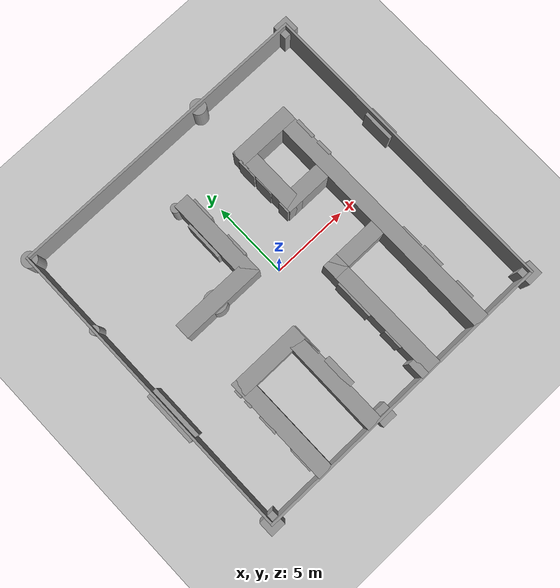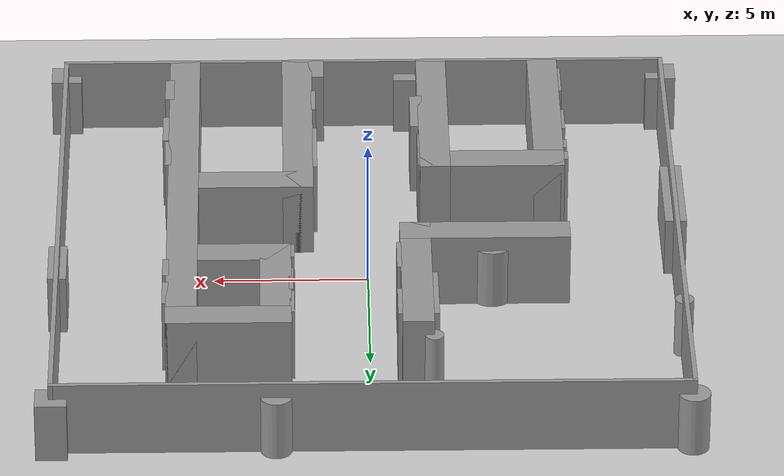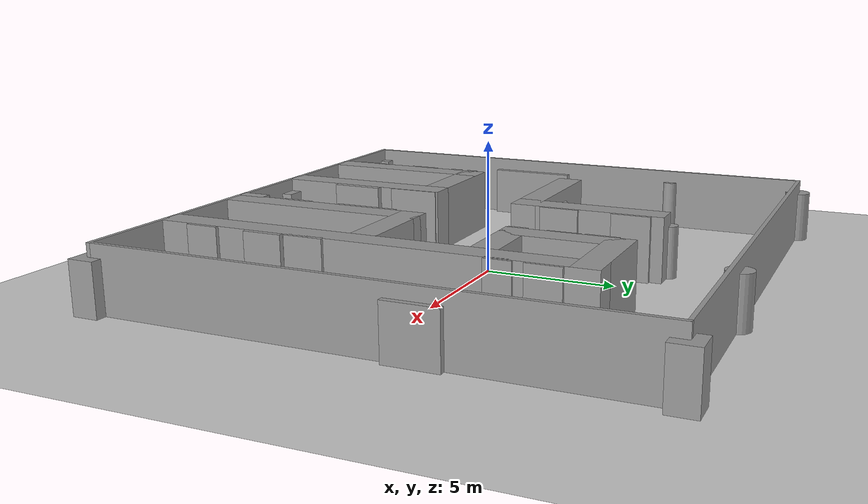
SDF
<sdf version="1.6">
 <world name="default">
  <include><uri>model://ground_plane</uri></include>
  <include><uri>model://sun</uri></include>
  <scene><shadows>false</shadows></scene>
  <physics type="ode">
   <real_time_update_rate>1000.0</real_time_update_rate>
   <max_step_size>0.001</max_step_size>
   <real_time_factor>1</real_time_factor>
   <ode>
    <solver>
     <type>quick</type>
     <iters>150</iters>
     <precon_iters>0</precon_iters>
     <sor>1.400000</sor>
     <use_dynamic_moi_rescaling>1</use_dynamic_moi_rescaling>
    </solver>
    <constraints>
     <cfm>0.00001</cfm>
     <erp>0.2</erp>
     <contact_max_correcting_vel>2000.000000</contact_max_correcting_vel>
     <contact_surface_layer>0.01000</contact_surface_layer>
    </constraints>
   </ode>
  </physics>
  <model name="warehouse"><static>1</static><include><uri>model://warehouse</uri></include></model>
  <model name="landmark_pillar_1">
   <pose>10.0 10.0 1.0 0 0 0</pose>
   <static>1</static>
   <link name="link">
    <collision name="collision"><geometry><box><size>1.0 1.0 2.0</size></box></geometry></collision>
    <visual name="visual">
     <geometry><box><size>1.0 1.0 2.0</size></box></geometry>
     <material>
      <script><uri>file://media/materials/scripts/gazebo.material</uri><name>Gazebo/Grey</name></script>
     </material>
    </visual>
   </link>
  </model>
  <model name="landmark_pillar_2">
   <pose>10.0 -10.0 1.0 0 0 0</pose>
   <static>1</static>
   <link name="link">
    <collision name="collision"><geometry><box><size>1.0 1.0 2.0</size></box></geometry></collision>
    <visual name="visual">
     <geometry><box><size>1.0 1.0 2.0</size></box></geometry>
     <material>
      <script><uri>file://media/materials/scripts/gazebo.material</uri><name>Gazebo/Grey</name></script>
     </material>
    </visual>
   </link>
  </model>
  <model name="landmark_pillar_3">
   <pose>-10.0 -10.0 1.0 0 0 0</pose>
   <static>1</static>
   <link name="link">
    <collision name="collision"><geometry><box><size>1.0 1.0 2.0</size></box></geometry></collision>
    <visual name="visual">
     <geometry><box><size>1.0 1.0 2.0</size></box></geometry>
     <material>
      <script><uri>file://media/materials/scripts/gazebo.material</uri><name>Gazebo/Grey</name></script>
     </material>
    </visual>
   </link>
  </model>
  <model name="landmark_pillar_4">
   <pose>-10.0 10.0 1.0 0 0 0</pose>
   <static>1</static>
   <link name="link">
    <collision name="collision">
     <geometry><cylinder><radius>0.5</radius><length>2.0</length></cylinder></geometry>
    </collision>
    <visual name="visual">
     <geometry><cylinder><radius>0.5</radius><length>2.0</length></cylinder></geometry>
     <material>
      <script><uri>file://media/materials/scripts/gazebo.material</uri><name>Gazebo/Grey</name></script>
     </material>
    </visual>
   </link>
  </model>
  <model name="landmark_pillar_5">
   <pose>3.0 10.0 1.0 0 0 0</pose>
   <static>1</static>
   <link name="link">
    <collision name="collision">
     <geometry><cylinder><radius>0.5</radius><length>2.0</length></cylinder></geometry>
    </collision>
    <visual name="visual">
     <geometry><cylinder><radius>0.5</radius><length>2.0</length></cylinder></geometry>
     <material>
      <script><uri>file://media/materials/scripts/gazebo.material</uri><name>Gazebo/Grey</name></script>
     </material>
    </visual>
   </link>
  </model>
  <model name="landmark_pillar_6">
   <pose>-1.5 -10.0 1.0 0 0 0</pose>
   <static>1</static>
   <link name="link">
    <collision name="collision"><geometry><box><size>1.0 1.0 2.0</size></box></geometry></collision>
    <visual name="visual">
     <geometry><box><size>1.0 1.0 2.0</size></box></geometry>
     <material>
      <script><uri>file://media/materials/scripts/gazebo.material</uri><name>Gazebo/Grey</name></script>
     </material>
    </visual>
   </link>
  </model>
  <model name="landmark_pillar_7">
   <pose>10.0 2.0 1.0 0 0 0</pose>
   <static>1</static>
   <link name="link">
    <collision name="collision"><geometry><box><size>0.5 2.0 2.0</size></box></geometry></collision>
    <visual name="visual">
     <geometry><box><size>0.6 2.0 2.0</size></box></geometry>
     <material>
      <script><uri>file://media/materials/scripts/gazebo.material</uri><name>Gazebo/Grey</name></script>
     </material>
    </visual>
   </link>
  </model>
  <model name="landmark_pillar_8">
   <pose>-10.0 -2.0 1.0 0 0 0</pose>
   <static>1</static>
   <link name="link">
    <collision name="collision"><geometry><box><size>0.7 3.5 2.0</size></box></geometry></collision>
    <visual name="visual">
     <geometry><box><size>0.7 3.5 2.0</size></box></geometry>
     <material>
      <script><uri>file://media/materials/scripts/gazebo.material</uri><name>Gazebo/Grey</name></script>
     </material>
    </visual>
   </link>
  </model>
  <model name="landmark_pillar_9">
   <pose>-2.0 4.0 1.0 0 0 0</pose>
   <static>1</static>
   <link name="link">
    <collision name="collision"><geometry><box><size>0.4 2.5 2.0</size></box></geometry></collision>
    <visual name="visual">
     <geometry><box><size>0.4 2.5 2.0</size></box></geometry>
     <material>
      <script><uri>file://media/materials/scripts/gazebo.material</uri><name>Gazebo/Grey</name></script>
     </material>
    </visual>
   </link>
  </model>
  <model name="landmark_pillar_10">
   <pose>-4.0 1.0 1.0 0 0 0</pose>
   <static>1</static>
   <link name="link">
    <collision name="collision">
     <geometry><cylinder><radius>0.7</radius><length>2.0</length></cylinder></geometry>
    </collision>
    <visual name="visual">
     <geometry><cylinder><radius>0.7</radius><length>2.0</length></cylinder></geometry>
     <material>
      <script><uri>file://media/materials/scripts/gazebo.material</uri><name>Gazebo/Grey</name></script>
     </material>
    </visual>
   </link>
  </model>
  <model name="landmark_pillar_11">
   <pose>-2.0 6.5 1.0 0 0 0</pose>
   <static>1</static>
   <link name="link">
    <collision name="collision">
     <geometry><cylinder><radius>0.3</radius><length>2.0</length></cylinder></geometry>
    </collision>
    <visual name="visual">
     <geometry><cylinder><radius>0.3</radius><length>2.0</length></cylinder></geometry>
     <material>
      <script><uri>file://media/materials/scripts/gazebo.material</uri><name>Gazebo/Grey</name></script>
     </material>
    </visual>
   </link>
  </model>
  <model name="landmark_pillar_12">
   <pose>-10.0 4.5 1.0 0 0 0</pose>
   <static>1</static>
   <link name="link">
    <collision name="collision">
     <geometry><cylinder><radius>0.3</radius><length>2.0</length></cylinder></geometry>
    </collision>
    <visual name="visual">
     <geometry><cylinder><radius>0.3</radius><length>2.0</length></cylinder></geometry>
     <material>
      <script><uri>file://media/materials/scripts/gazebo.material</uri><name>Gazebo/Grey</name></script>
     </material>
    </visual>
   </link>
  </model>
  <plugin name="gazebo_ros_state" filename="libgazebo_ros_state.so">
   <ros><namespace>/</namespace></ros>
   <update_rate>20</update_rate>
  </plugin>
 </world>
</sdf>

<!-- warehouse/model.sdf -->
<sdf version='1.7'>
  <model name='warehouse'>
    <pose>0 0 0 0 -0 0</pose>
    <link name='Wall_0'>
      <collision name='Wall_0_Collision'>
        <geometry>
          <box>
            <size>20.15 0.15 2.5</size>
          </box>
        </geometry>
        <pose>0 0 1.25 0 -0 0</pose>
      </collision>
      <visual name='Wall_0_Visual'>
        <pose>0 0 1.25 0 -0 0</pose>
        <geometry>
          <box>
            <size>20.15 0.15 2.5</size>
          </box>
        </geometry>
        <material>
          <script>
            <uri>file://media/materials/scripts/gazebo.material</uri>
            <name>Gazebo/Grey</name>
          </script>
          <ambient>1 1 1 1</ambient>
        </material>
        <meta>
          <layer>0</layer>
        </meta>
      </visual>
      <pose>10 0 0 0 -0 -1.5708</pose>
    </link>
    <link name='Wall_10'>
      <collision name='Wall_10_Collision'>
        <geometry>
          <box>
            <size>4 1 2.5</size>
          </box>
        </geometry>
        <pose>0 0 1.25 0 -0 0</pose>
      </collision>
      <visual name='Wall_10_Visual'>
        <pose>0 0 1.25 0 -0 0</pose>
        <geometry>
          <box>
            <size>4 1 2.5</size>
          </box>
        </geometry>
        <material>
          <script>
            <uri>file://media/materials/scripts/gazebo.material</uri>
            <name>Gazebo/Grey</name>
          </script>
          <ambient>1 1 1 1</ambient>
        </material>
        <meta>
          <layer>0</layer>
        </meta>
      </visual>
      <pose>4.5 6 0 0 -0 3.14159</pose>
    </link>
    <link name='Wall_16'>
      <collision name='Wall_16_Collision'>
        <geometry>
          <box>
            <size>4.75 1 2.5</size>
          </box>
        </geometry>
        <pose>0 0 1.25 0 -0 0</pose>
      </collision>
      <visual name='Wall_16_Visual'>
        <pose>0 0 1.25 0 -0 0</pose>
        <geometry>
          <box>
            <size>4.75 1 2.5</size>
          </box>
        </geometry>
        <material>
          <script>
            <uri>file://media/materials/scripts/gazebo.material</uri>
            <name>Gazebo/Grey</name>
          </script>
          <ambient>1 1 1 1</ambient>
        </material>
        <meta>
          <layer>0</layer>
        </meta>
      </visual>
      <pose>3 4.125 0 0 -0 -1.5708</pose>
    </link>
    <link name='Wall_18'>
      <collision name='Wall_18_Collision'>
        <geometry>
          <box>
            <size>3 1 2.5</size>
          </box>
        </geometry>
        <pose>0 0 1.25 0 -0 0</pose>
      </collision>
      <visual name='Wall_18_Visual'>
        <pose>0 0 1.25 0 -0 0</pose>
        <geometry>
          <box>
            <size>3 1 2.5</size>
          </box>
        </geometry>
        <material>
          <script>
            <uri>file://media/materials/scripts/gazebo.material</uri>
            <name>Gazebo/Grey</name>
          </script>
          <ambient>1 1 1 1</ambient>
        </material>
        <meta>
          <layer>0</layer>
        </meta>
      </visual>
      <pose>4 2.25 0 0 -0 0</pose>
    </link>
    <link name='Wall_2'>
      <collision name='Wall_2_Collision'>
        <geometry>
          <box>
            <size>20.15 0.15 2.5</size>
          </box>
        </geometry>
        <pose>0 0 1.25 0 -0 0</pose>
      </collision>
      <visual name='Wall_2_Visual'>
        <pose>0 0 1.25 0 -0 0</pose>
        <geometry>
          <box>
            <size>20.15 0.15 2.5</size>
          </box>
        </geometry>
        <material>
          <script>
            <uri>file://media/materials/scripts/gazebo.material</uri>
            <name>Gazebo/Grey</name>
          </script>
          <ambient>1 1 1 1</ambient>
        </material>
        <meta>
          <layer>0</layer>
        </meta>
      </visual>
      <pose>0 10 0 0 -0 3.14159</pose>
    </link>
    <link name='Wall_20'>
      <collision name='Wall_20_Collision'>
        <geometry>
          <box>
            <size>3.75 1 2.5</size>
          </box>
        </geometry>
        <pose>0 0 1.25 0 -0 0</pose>
      </collision>
      <visual name='Wall_20_Visual'>
        <pose>0 0 1.25 0 -0 0</pose>
        <geometry>
          <box>
            <size>3.75 1 2.5</size>
          </box>
        </geometry>
        <material>
          <script>
            <uri>file://media/materials/scripts/gazebo.material</uri>
            <name>Gazebo/Grey</name>
          </script>
          <ambient>1 1 1 1</ambient>
        </material>
        <meta>
          <layer>0</layer>
        </meta>
      </visual>
      <pose>3.625 -2.25 0 0 -0 0</pose>
    </link>
    <link name='Wall_22'>
      <collision name='Wall_22_Collision'>
        <geometry>
          <box>
            <size>8.25 1 2.5</size>
          </box>
        </geometry>
        <pose>0 0 1.25 0 -0 0</pose>
      </collision>
      <visual name='Wall_22_Visual'>
        <pose>0 0 1.25 0 -0 0</pose>
        <geometry>
          <box>
            <size>8.25 1 2.5</size>
          </box>
        </geometry>
        <material>
          <script>
            <uri>file://media/materials/scripts/gazebo.material</uri>
            <name>Gazebo/Grey</name>
          </script>
          <ambient>1 1 1 1</ambient>
        </material>
        <meta>
          <layer>0</layer>
        </meta>
      </visual>
      <pose>2.25 -5.875 0 0 -0 1.5708</pose>
    </link>
    <link name='Wall_24'>
      <collision name='Wall_24_Collision'>
        <geometry>
          <box>
            <size>6 1 2.5</size>
          </box>
        </geometry>
        <pose>0 0 1.25 0 -0 0</pose>
      </collision>
      <visual name='Wall_24_Visual'>
        <pose>0 0 1.25 0 -0 0</pose>
        <geometry>
          <box>
            <size>6 1 2.5</size>
          </box>
        </geometry>
        <material>
          <script>
            <uri>file://media/materials/scripts/gazebo.material</uri>
            <name>Gazebo/Grey</name>
          </script>
          <ambient>1 1 1 1</ambient>
        </material>
        <meta>
          <layer>0</layer>
        </meta>
      </visual>
      <pose>-1.5 3.5 0 0 -0 -1.5708</pose>
    </link>
    <link name='Wall_26'>
      <collision name='Wall_26_Collision'>
        <geometry>
          <box>
            <size>7 1 2.5</size>
          </box>
        </geometry>
        <pose>0 0 1.25 0 -0 0</pose>
      </collision>
      <visual name='Wall_26_Visual'>
        <pose>0 0 1.25 0 -0 0</pose>
        <geometry>
          <box>
            <size>7 1 2.5</size>
          </box>
        </geometry>
        <material>
          <script>
            <uri>file://media/materials/scripts/gazebo.material</uri>
            <name>Gazebo/Grey</name>
          </script>
          <ambient>1 1 1 1</ambient>
        </material>
        <meta>
          <layer>0</layer>
        </meta>
      </visual>
      <pose>-2.25 -6.5 0 0 -0 -1.5708</pose>
    </link>
    <link name='Wall_28'>
      <collision name='Wall_28_Collision'>
        <geometry>
          <box>
            <size>4.75 1 2.5</size>
          </box>
        </geometry>
        <pose>0 0 1.25 0 -0 0</pose>
      </collision>
      <visual name='Wall_28_Visual'>
        <pose>0 0 1.25 0 -0 0</pose>
        <geometry>
          <box>
            <size>4.75 1 2.5</size>
          </box>
        </geometry>
        <material>
          <script>
            <uri>file://media/materials/scripts/gazebo.material</uri>
            <name>Gazebo/Grey</name>
          </script>
          <ambient>1 1 1 1</ambient>
        </material>
        <meta>
          <layer>0</layer>
        </meta>
      </visual>
      <pose>-4.125 -3.5 0 0 -0 3.14159</pose>
    </link>
    <link name='Wall_30'>
      <collision name='Wall_30_Collision'>
        <geometry>
          <box>
            <size>7 1 2.5</size>
          </box>
        </geometry>
        <pose>0 0 1.25 0 -0 0</pose>
      </collision>
      <visual name='Wall_30_Visual'>
        <pose>0 0 1.25 0 -0 0</pose>
        <geometry>
          <box>
            <size>7 1 2.5</size>
          </box>
        </geometry>
        <material>
          <script>
            <uri>file://media/materials/scripts/gazebo.material</uri>
            <name>Gazebo/Grey</name>
          </script>
          <ambient>1 1 1 1</ambient>
        </material>
        <meta>
          <layer>0</layer>
        </meta>
      </visual>
      <pose>-6 -6.5 0 0 -0 -1.5708</pose>
    </link>
    <link name='Wall_32'>
      <collision name='Wall_32_Collision'>
        <geometry>
          <box>
            <size>5.5 1 2.5</size>
          </box>
        </geometry>
        <pose>0 0 1.25 0 -0 0</pose>
      </collision>
      <visual name='Wall_32_Visual'>
        <pose>0 0 1.25 0 -0 0</pose>
        <geometry>
          <box>
            <size>5.5 1 2.5</size>
          </box>
        </geometry>
        <material>
          <script>
            <uri>file://media/materials/scripts/gazebo.material</uri>
            <name>Gazebo/Grey</name>
          </script>
          <ambient>1 1 1 1</ambient>
        </material>
        <meta>
          <layer>0</layer>
        </meta>
      </visual>
      <pose>-3.75 1 0 0 -0 3.14159</pose>
    </link>
    <link name='Wall_34'>
      <collision name='Wall_34_Collision'>
        <geometry>
          <box>
            <size>1.3 0.2 2.5</size>
          </box>
        </geometry>
        <pose>0 0 1.25 0 -0 0</pose>
      </collision>
      <visual name='Wall_34_Visual'>
        <pose>0 0 1.25 0 -0 0</pose>
        <geometry>
          <box>
            <size>1.3 0.2 2.5</size>
          </box>
        </geometry>
        <material>
          <script>
            <uri>file://media/materials/scripts/gazebo.material</uri>
            <name>Gazebo/Grey</name>
          </script>
          <ambient>1 1 1 1</ambient>
        </material>
        <meta>
          <layer>0</layer>
        </meta>
      </visual>
      <pose>6.51 4.684 0 0 -0 -1.5708</pose>
    </link>
    <link name='Wall_36'>
      <collision name='Wall_36_Collision'>
        <geometry>
          <box>
            <size>1 0.2 2.5</size>
          </box>
        </geometry>
        <pose>0 0 1.25 0 -0 0</pose>
      </collision>
      <visual name='Wall_36_Visual'>
        <pose>0 0 1.25 0 -0 0</pose>
        <geometry>
          <box>
            <size>1 0.2 2.5</size>
          </box>
        </geometry>
        <material>
          <script>
            <uri>file://media/materials/scripts/gazebo.material</uri>
            <name>Gazebo/Grey</name>
          </script>
          <ambient>1 1 1 1</ambient>
        </material>
        <meta>
          <layer>0</layer>
        </meta>
      </visual>
      <pose>6.51 3.149 0 0 -0 -1.5708</pose>
    </link>
    <link name='Wall_38'>
      <collision name='Wall_38_Collision'>
        <geometry>
          <box>
            <size>1.5 0.2 2.5</size>
          </box>
        </geometry>
        <pose>0 0 1.25 0 -0 0</pose>
      </collision>
      <visual name='Wall_38_Visual'>
        <pose>0 0 1.25 0 -0 0</pose>
        <geometry>
          <box>
            <size>1.5 0.2 2.5</size>
          </box>
        </geometry>
        <material>
          <script>
            <uri>file://media/materials/scripts/gazebo.material</uri>
            <name>Gazebo/Grey</name>
          </script>
          <ambient>1 1 1 1</ambient>
        </material>
        <meta>
          <layer>0</layer>
        </meta>
      </visual>
      <pose>6.51 -3.971 0 0 -0 -1.5708</pose>
    </link>
    <link name='Wall_4'>
      <collision name='Wall_4_Collision'>
        <geometry>
          <box>
            <size>20.15 0.15 2.5</size>
          </box>
        </geometry>
        <pose>0 0 1.25 0 -0 0</pose>
      </collision>
      <visual name='Wall_4_Visual'>
        <pose>0 0 1.25 0 -0 0</pose>
        <geometry>
          <box>
            <size>20.15 0.15 2.5</size>
          </box>
        </geometry>
        <material>
          <script>
            <uri>file://media/materials/scripts/gazebo.material</uri>
            <name>Gazebo/Grey</name>
          </script>
          <ambient>1 1 1 1</ambient>
        </material>
        <meta>
          <layer>0</layer>
        </meta>
      </visual>
      <pose>-10 0 0 0 -0 -1.5708</pose>
    </link>
    <link name='Wall_40'>
      <collision name='Wall_40_Collision'>
        <geometry>
          <box>
            <size>1.5 0.2 2.5</size>
          </box>
        </geometry>
        <pose>0 0 1.25 0 -0 0</pose>
      </collision>
      <visual name='Wall_40_Visual'>
        <pose>0 0 1.25 0 -0 0</pose>
        <geometry>
          <box>
            <size>1.5 0.2 2.5</size>
          </box>
        </geometry>
        <material>
          <script>
            <uri>file://media/materials/scripts/gazebo.material</uri>
            <name>Gazebo/Grey</name>
          </script>
          <ambient>1 1 1 1</ambient>
        </material>
        <meta>
          <layer>0</layer>
        </meta>
      </visual>
      <pose>6.6 -5.552 0 0 -0 -1.5708</pose>
    </link>
    <link name='Wall_42'>
      <collision name='Wall_42_Collision'>
        <geometry>
          <box>
            <size>1.25 0.3 2.5</size>
          </box>
        </geometry>
        <pose>0 0 1.25 0 -0 0</pose>
      </collision>
      <visual name='Wall_42_Visual'>
        <pose>0 0 1.25 0 -0 0</pose>
        <geometry>
          <box>
            <size>1.25 0.3 2.5</size>
          </box>
        </geometry>
        <material>
          <script>
            <uri>file://media/materials/scripts/gazebo.material</uri>
            <name>Gazebo/Grey</name>
          </script>
          <ambient>1 1 1 1</ambient>
        </material>
        <meta>
          <layer>0</layer>
        </meta>
      </visual>
      <pose>6.5 -8.106 0 0 -0 -1.5708</pose>
    </link>
    <link name='Wall_44'>
      <collision name='Wall_44_Collision'>
        <geometry>
          <box>
            <size>1.25 0.15 2.5</size>
          </box>
        </geometry>
        <pose>0 0 1.25 0 -0 0</pose>
      </collision>
      <visual name='Wall_44_Visual'>
        <pose>0 0 1.25 0 -0 0</pose>
        <geometry>
          <box>
            <size>1.25 0.15 2.5</size>
          </box>
        </geometry>
        <material>
          <script>
            <uri>file://media/materials/scripts/gazebo.material</uri>
            <name>Gazebo/Grey</name>
          </script>
          <ambient>1 1 1 1</ambient>
        </material>
        <meta>
          <layer>0</layer>
        </meta>
      </visual>
      <pose>2.47736 5.26057 0 0 -0 1.5708</pose>
    </link>
    <link name='Wall_46'>
      <collision name='Wall_46_Collision'>
        <geometry>
          <box>
            <size>1.25 0.15 2.5</size>
          </box>
        </geometry>
        <pose>0 0 1.25 0 -0 0</pose>
      </collision>
      <visual name='Wall_46_Visual'>
        <pose>0 0 1.25 0 -0 0</pose>
        <geometry>
          <box>
            <size>1.25 0.15 2.5</size>
          </box>
        </geometry>
        <material>
          <script>
            <uri>file://media/materials/scripts/gazebo.material</uri>
            <name>Gazebo/Grey</name>
          </script>
          <ambient>1 1 1 1</ambient>
        </material>
        <meta>
          <layer>0</layer>
        </meta>
      </visual>
      <pose>2.50264 3.88239 0 0 -0 -1.5708</pose>
    </link>
    <link name='Wall_48'>
      <collision name='Wall_48_Collision'>
        <geometry>
          <box>
            <size>0.75 0.15 2.5</size>
          </box>
        </geometry>
        <pose>0 0 1.25 0 -0 0</pose>
      </collision>
      <visual name='Wall_48_Visual'>
        <pose>0 0 1.25 0 -0 0</pose>
        <geometry>
          <box>
            <size>0.75 0.15 2.5</size>
          </box>
        </geometry>
        <material>
          <script>
            <uri>file://media/materials/scripts/gazebo.material</uri>
            <name>Gazebo/Grey</name>
          </script>
          <ambient>1 1 1 1</ambient>
        </material>
        <meta>
          <layer>0</layer>
        </meta>
      </visual>
      <pose>2.46343 2.18465 0 0 -0 -1.5708</pose>
    </link>
    <link name='Wall_50'>
      <collision name='Wall_50_Collision'>
        <geometry>
          <box>
            <size>2.5 0.15 2.5</size>
          </box>
        </geometry>
        <pose>0 0 1.25 0 -0 0</pose>
      </collision>
      <visual name='Wall_50_Visual'>
        <pose>0 0 1.25 0 -0 0</pose>
        <geometry>
          <box>
            <size>2.5 0.15 2.5</size>
          </box>
        </geometry>
        <material>
          <script>
            <uri>file://media/materials/scripts/gazebo.material</uri>
            <name>Gazebo/Grey</name>
          </script>
          <ambient>1 1 1 1</ambient>
        </material>
        <meta>
          <layer>0</layer>
        </meta>
      </visual>
      <pose>1.69227 -4.29414 0 0 -0 -1.5708</pose>
    </link>
    <link name='Wall_52'>
      <collision name='Wall_52_Collision'>
        <geometry>
          <box>
            <size>1.25 0.15 2.5</size>
          </box>
        </geometry>
        <pose>0 0 1.25 0 -0 0</pose>
      </collision>
      <visual name='Wall_52_Visual'>
        <pose>0 0 1.25 0 -0 0</pose>
        <geometry>
          <box>
            <size>1.25 0.15 2.5</size>
          </box>
        </geometry>
        <material>
          <script>
            <uri>file://media/materials/scripts/gazebo.material</uri>
            <name>Gazebo/Grey</name>
          </script>
          <ambient>1 1 1 1</ambient>
        </material>
        <meta>
          <layer>0</layer>
        </meta>
      </visual>
      <pose>1.71522 -7.36306 0 0 -0 -1.5708</pose>
    </link>
    <link name='Wall_54'>
      <collision name='Wall_54_Collision'>
        <geometry>
          <box>
            <size>1.10026 0.5 2.5</size>
          </box>
        </geometry>
        <pose>0 0 1.25 0 -0 0</pose>
      </collision>
      <visual name='Wall_54_Visual'>
        <pose>0 0 1.25 0 -0 0</pose>
        <geometry>
          <box>
            <size>1.10026 0.5 2.5</size>
          </box>
        </geometry>
        <material>
          <script>
            <uri>file://media/materials/scripts/gazebo.material</uri>
            <name>Gazebo/Grey</name>
          </script>
          <ambient>1 1 1 1</ambient>
        </material>
        <meta>
          <layer>0</layer>
        </meta>
      </visual>
      <pose>1.607 -9.467 0 0 -0 -1.5708</pose>
    </link>
    <link name='Wall_56'>
      <collision name='Wall_56_Collision'>
        <geometry>
          <box>
            <size>2 0.4 2.5</size>
          </box>
        </geometry>
        <pose>0 0 1.25 0 -0 0</pose>
      </collision>
      <visual name='Wall_56_Visual'>
        <pose>0 0 1.25 0 -0 0</pose>
        <geometry>
          <box>
            <size>2 0.4 2.5</size>
          </box>
        </geometry>
        <material>
          <script>
            <uri>file://media/materials/scripts/gazebo.material</uri>
            <name>Gazebo/Grey</name>
          </script>
          <ambient>1 1 1 1</ambient>
        </material>
        <meta>
          <layer>0</layer>
        </meta>
      </visual>
      <pose>-1.6867 -6.58521 0 0 -0 -1.5708</pose>
    </link>
    <link name='Wall_58'>
      <collision name='Wall_58_Collision'>
        <geometry>
          <box>
            <size>2 0.15 2.5</size>
          </box>
        </geometry>
        <pose>0 0 1.25 0 -0 0</pose>
      </collision>
      <visual name='Wall_58_Visual'>
        <pose>0 0 1.25 0 -0 0</pose>
        <geometry>
          <box>
            <size>2 0.15 2.5</size>
          </box>
        </geometry>
        <material>
          <script>
            <uri>file://media/materials/scripts/gazebo.material</uri>
            <name>Gazebo/Grey</name>
          </script>
          <ambient>1 1 1 1</ambient>
        </material>
        <meta>
          <layer>0</layer>
        </meta>
      </visual>
      <pose>-1.76751 -4.0837 0 0 -0 -1.5708</pose>
    </link>
    <link name='Wall_6'>
      <collision name='Wall_6_Collision'>
        <geometry>
          <box>
            <size>20.15 0.15 2.5</size>
          </box>
        </geometry>
        <pose>0 0 1.25 0 -0 0</pose>
      </collision>
      <visual name='Wall_6_Visual'>
        <pose>0 0 1.25 0 -0 0</pose>
        <geometry>
          <box>
            <size>20.15 0.15 2.5</size>
          </box>
        </geometry>
        <material>
          <script>
            <uri>file://media/materials/scripts/gazebo.material</uri>
            <name>Gazebo/Grey</name>
          </script>
          <ambient>1 1 1 1</ambient>
        </material>
        <meta>
          <layer>0</layer>
        </meta>
      </visual>
      <pose>0 -10 0 0 -0 0</pose>
    </link>
    <link name='Wall_60'>
      <collision name='Wall_60_Collision'>
        <geometry>
          <box>
            <size>1.5 0.15 2.5</size>
          </box>
        </geometry>
        <pose>0 0 1.25 0 -0 0</pose>
      </collision>
      <visual name='Wall_60_Visual'>
        <pose>0 0 1.25 0 -0 0</pose>
        <geometry>
          <box>
            <size>1.5 0.15 2.5</size>
          </box>
        </geometry>
        <material>
          <script>
            <uri>file://media/materials/scripts/gazebo.material</uri>
            <name>Gazebo/Grey</name>
          </script>
          <ambient>1 1 1 1</ambient>
        </material>
        <meta>
          <layer>0</layer>
        </meta>
      </visual>
      <pose>-0.935121 5.28224 0 0 -0 -1.5708</pose>
    </link>
    <link name='Wall_62'>
      <collision name='Wall_62_Collision'>
        <geometry>
          <box>
            <size>1.5 0.15 2.5</size>
          </box>
        </geometry>
        <pose>0 0 1.25 0 -0 0</pose>
      </collision>
      <visual name='Wall_62_Visual'>
        <pose>0 0 1.25 0 -0 0</pose>
        <geometry>
          <box>
            <size>1.5 0.15 2.5</size>
          </box>
        </geometry>
        <material>
          <script>
            <uri>file://media/materials/scripts/gazebo.material</uri>
            <name>Gazebo/Grey</name>
          </script>
          <ambient>1 1 1 1</ambient>
        </material>
        <meta>
          <layer>0</layer>
        </meta>
      </visual>
      <pose>-0.955695 2.48413 0 0 -0 -1.5708</pose>
    </link>
    <link name='Wall_64'>
      <collision name='Wall_64_Collision'>
        <geometry>
          <box>
            <size>1.5 0.15 2.5</size>
          </box>
        </geometry>
        <pose>0 0 1.25 0 -0 0</pose>
      </collision>
      <visual name='Wall_64_Visual'>
        <pose>0 0 1.25 0 -0 0</pose>
        <geometry>
          <box>
            <size>1.5 0.15 2.5</size>
          </box>
        </geometry>
        <material>
          <script>
            <uri>file://media/materials/scripts/gazebo.material</uri>
            <name>Gazebo/Grey</name>
          </script>
          <ambient>1 1 1 1</ambient>
        </material>
        <meta>
          <layer>0</layer>
        </meta>
      </visual>
      <pose>-6.51322 -8.61183 0 0 -0 -1.5708</pose>
    </link>
    <link name='Wall_66'>
      <collision name='Wall_66_Collision'>
        <geometry>
          <box>
            <size>1.25 0.15 2.5</size>
          </box>
        </geometry>
        <pose>0 0 1.25 0 -0 0</pose>
      </collision>
      <visual name='Wall_66_Visual'>
        <pose>0 0 1.25 0 -0 0</pose>
        <geometry>
          <box>
            <size>1.25 0.15 2.5</size>
          </box>
        </geometry>
        <material>
          <script>
            <uri>file://media/materials/scripts/gazebo.material</uri>
            <name>Gazebo/Grey</name>
          </script>
          <ambient>1 1 1 1</ambient>
        </material>
        <meta>
          <layer>0</layer>
        </meta>
      </visual>
      <pose>-6.53266 -5.99103 0 0 -0 -1.5708</pose>
    </link>
    <link name='Wall_68'>
      <collision name='Wall_68_Collision'>
        <geometry>
          <box>
            <size>0.5 0.15 2.5</size>
          </box>
        </geometry>
        <pose>0 0 1.25 0 -0 0</pose>
      </collision>
      <visual name='Wall_68_Visual'>
        <pose>0 0 1.25 0 -0 0</pose>
        <geometry>
          <box>
            <size>0.5 0.15 2.5</size>
          </box>
        </geometry>
        <material>
          <script>
            <uri>file://media/materials/scripts/gazebo.material</uri>
            <name>Gazebo/Grey</name>
          </script>
          <ambient>1 1 1 1</ambient>
        </material>
        <meta>
          <layer>0</layer>
        </meta>
      </visual>
      <pose>-6.54289 -4.41923 0 0 -0 -1.5708</pose>
    </link>
    <link name='Wall_70'>
      <collision name='Wall_70_Collision'>
        <geometry>
          <box>
            <size>0.5 0.15 2.5</size>
          </box>
        </geometry>
        <pose>0 0 1.25 0 -0 0</pose>
      </collision>
      <visual name='Wall_70_Visual'>
        <pose>0 0 1.25 0 -0 0</pose>
        <geometry>
          <box>
            <size>0.5 0.15 2.5</size>
          </box>
        </geometry>
        <material>
          <script>
            <uri>file://media/materials/scripts/gazebo.material</uri>
            <name>Gazebo/Grey</name>
          </script>
          <ambient>1 1 1 1</ambient>
        </material>
        <meta>
          <layer>0</layer>
        </meta>
      </visual>
      <pose>-6.55312 -3.64182 0 0 -0 -1.5708</pose>
    </link>
    <link name='Wall_8'>
      <collision name='Wall_8_Collision'>
        <geometry>
          <box>
            <size>16.5 1 2.5</size>
          </box>
        </geometry>
        <pose>0 0 1.25 0 -0 0</pose>
      </collision>
      <visual name='Wall_8_Visual'>
        <pose>0 0 1.25 0 -0 0</pose>
        <geometry>
          <box>
            <size>16.5 1 2.5</size>
          </box>
        </geometry>
        <material>
          <script>
            <uri>file://media/materials/scripts/gazebo.material</uri>
            <name>Gazebo/Grey</name>
          </script>
          <ambient>1 1 1 1</ambient>
        </material>
        <meta>
          <layer>0</layer>
        </meta>
      </visual>
      <pose>6 -1.75 0 0 -0 -1.5708</pose>
    </link>
    <static>1</static>
  </model>
</sdf>
